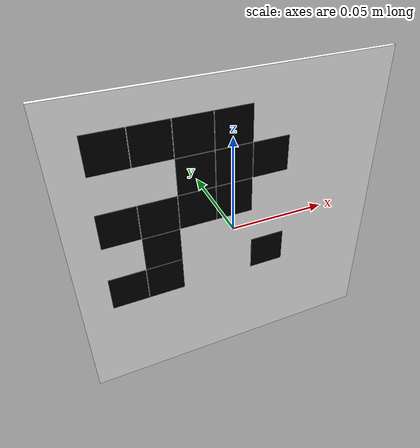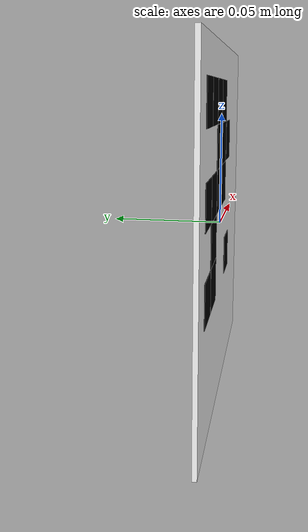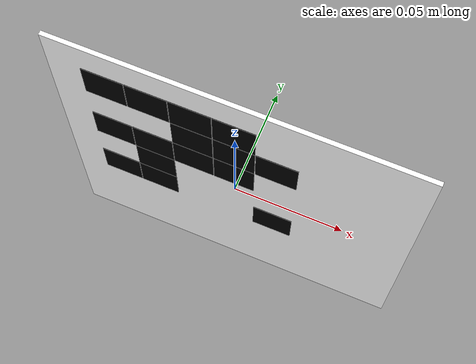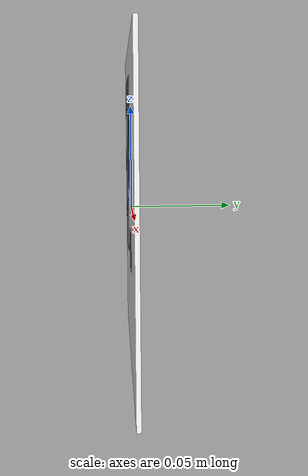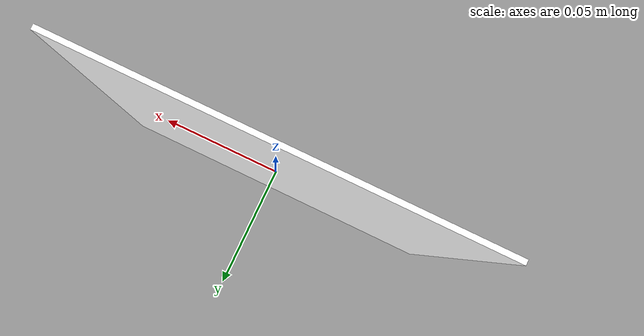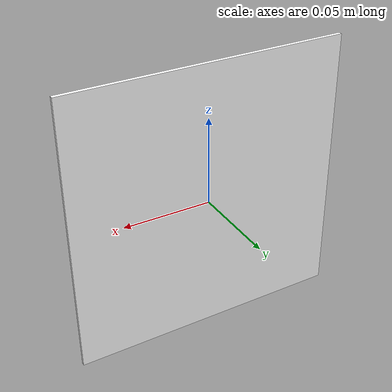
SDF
<?xml version="1.0"?>
<sdf version="1.7">
  <model name="aruco_5x5_250_id1_large">
    <static>true</static>
    <self_collide>false</self_collide>
    <link name="board">
      <pose>0 0 0 0 0 0</pose>
      <inertial>
        <mass>0.1</mass>
        <inertia>
          <ixx>0.0002</ixx><iyy>0.0002</iyy><izz>0.0002</izz>
        </inertia>
      </inertial>
      <visual name="white_backing">
        <geometry>
          <box><size>0.16 0.002 0.16</size></box>
        </geometry>
        <material>
          <ambient>1 1 1 1</ambient><diffuse>1 1 1 1</diffuse><specular>0.1 0.1 0.1 1</specular>
        </material>
      </visual>

      <visual name="front_r0_c0">
        <pose>-0.055714 -0.001100 0.055714 0 0 0</pose>
        <geometry>
          <box><size>0.018200 0.0004 0.018200</size></box>
        </geometry>
        <material>
          <ambient>0 0 0 1</ambient><diffuse>0 0 0 1</diffuse><specular>0 0 0 1</specular>
        </material>
      </visual>

      <visual name="front_r0_c1">
        <pose>-0.037143 -0.001100 0.055714 0 0 0</pose>
        <geometry>
          <box><size>0.018200 0.0004 0.018200</size></box>
        </geometry>
        <material>
          <ambient>0 0 0 1</ambient><diffuse>0 0 0 1</diffuse><specular>0 0 0 1</specular>
        </material>
      </visual>

      <visual name="front_r0_c2">
        <pose>-0.018571 -0.001100 0.055714 0 0 0</pose>
        <geometry>
          <box><size>0.018200 0.0004 0.018200</size></box>
        </geometry>
        <material>
          <ambient>0 0 0 1</ambient><diffuse>0 0 0 1</diffuse><specular>0 0 0 1</specular>
        </material>
      </visual>

      <visual name="front_r0_c3">
        <pose>0.000000 -0.001100 0.055714 0 0 0</pose>
        <geometry>
          <box><size>0.018200 0.0004 0.018200</size></box>
        </geometry>
        <material>
          <ambient>0 0 0 1</ambient><diffuse>0 0 0 1</diffuse><specular>0 0 0 1</specular>
        </material>
      </visual>

      <visual name="front_r1_c2">
        <pose>-0.018571 -0.001100 0.037143 0 0 0</pose>
        <geometry>
          <box><size>0.018200 0.0004 0.018200</size></box>
        </geometry>
        <material>
          <ambient>0 0 0 1</ambient><diffuse>0 0 0 1</diffuse><specular>0 0 0 1</specular>
        </material>
      </visual>

      <visual name="front_r1_c3">
        <pose>0.000000 -0.001100 0.037143 0 0 0</pose>
        <geometry>
          <box><size>0.018200 0.0004 0.018200</size></box>
        </geometry>
        <material>
          <ambient>0 0 0 1</ambient><diffuse>0 0 0 1</diffuse><specular>0 0 0 1</specular>
        </material>
      </visual>

      <visual name="front_r1_c4">
        <pose>0.018571 -0.001100 0.037143 0 0 0</pose>
        <geometry>
          <box><size>0.018200 0.0004 0.018200</size></box>
        </geometry>
        <material>
          <ambient>0 0 0 1</ambient><diffuse>0 0 0 1</diffuse><specular>0 0 0 1</specular>
        </material>
      </visual>

      <visual name="front_r2_c0">
        <pose>-0.055714 -0.001100 0.018571 0 0 0</pose>
        <geometry>
          <box><size>0.018200 0.0004 0.018200</size></box>
        </geometry>
        <material>
          <ambient>0 0 0 1</ambient><diffuse>0 0 0 1</diffuse><specular>0 0 0 1</specular>
        </material>
      </visual>

      <visual name="front_r2_c1">
        <pose>-0.037143 -0.001100 0.018571 0 0 0</pose>
        <geometry>
          <box><size>0.018200 0.0004 0.018200</size></box>
        </geometry>
        <material>
          <ambient>0 0 0 1</ambient><diffuse>0 0 0 1</diffuse><specular>0 0 0 1</specular>
        </material>
      </visual>

      <visual name="front_r2_c2">
        <pose>-0.018571 -0.001100 0.018571 0 0 0</pose>
        <geometry>
          <box><size>0.018200 0.0004 0.018200</size></box>
        </geometry>
        <material>
          <ambient>0 0 0 1</ambient><diffuse>0 0 0 1</diffuse><specular>0 0 0 1</specular>
        </material>
      </visual>

      <visual name="front_r2_c3">
        <pose>0.000000 -0.001100 0.018571 0 0 0</pose>
        <geometry>
          <box><size>0.018200 0.0004 0.018200</size></box>
        </geometry>
        <material>
          <ambient>0 0 0 1</ambient><diffuse>0 0 0 1</diffuse><specular>0 0 0 1</specular>
        </material>
      </visual>

      <visual name="front_r3_c1">
        <pose>-0.037143 -0.001100 0.000000 0 0 0</pose>
        <geometry>
          <box><size>0.018200 0.0004 0.018200</size></box>
        </geometry>
        <material>
          <ambient>0 0 0 1</ambient><diffuse>0 0 0 1</diffuse><specular>0 0 0 1</specular>
        </material>
      </visual>

      <visual name="front_r4_c0">
        <pose>-0.055714 -0.001100 -0.018571 0 0 0</pose>
        <geometry>
          <box><size>0.018200 0.0004 0.018200</size></box>
        </geometry>
        <material>
          <ambient>0 0 0 1</ambient><diffuse>0 0 0 1</diffuse><specular>0 0 0 1</specular>
        </material>
      </visual>

      <visual name="front_r4_c1">
        <pose>-0.037143 -0.001100 -0.018571 0 0 0</pose>
        <geometry>
          <box><size>0.018200 0.0004 0.018200</size></box>
        </geometry>
        <material>
          <ambient>0 0 0 1</ambient><diffuse>0 0 0 1</diffuse><specular>0 0 0 1</specular>
        </material>
      </visual>

      <visual name="front_r4_c4">
        <pose>0.018571 -0.001100 -0.018571 0 0 0</pose>
        <geometry>
          <box><size>0.018200 0.0004 0.018200</size></box>
        </geometry>
        <material>
          <ambient>0 0 0 1</ambient><diffuse>0 0 0 1</diffuse><specular>0 0 0 1</specular>
        </material>
      </visual>

    </link>
  </model>
</sdf>
